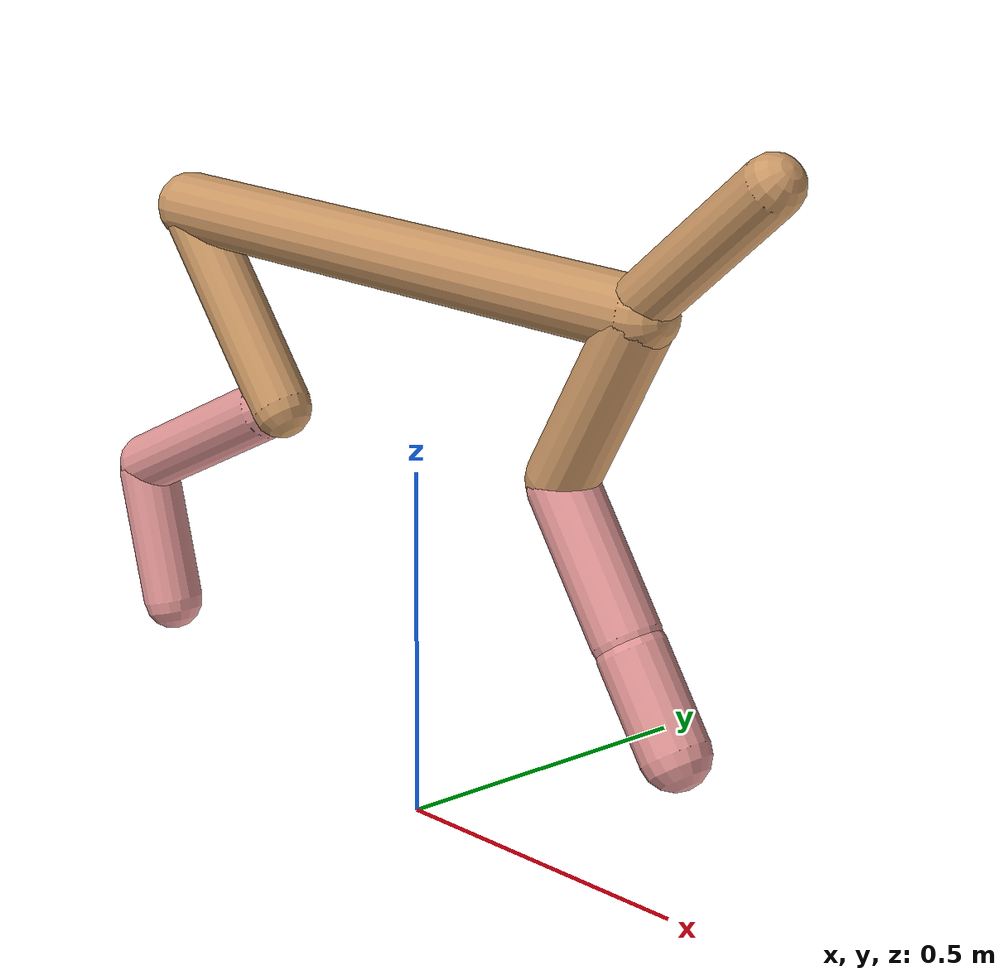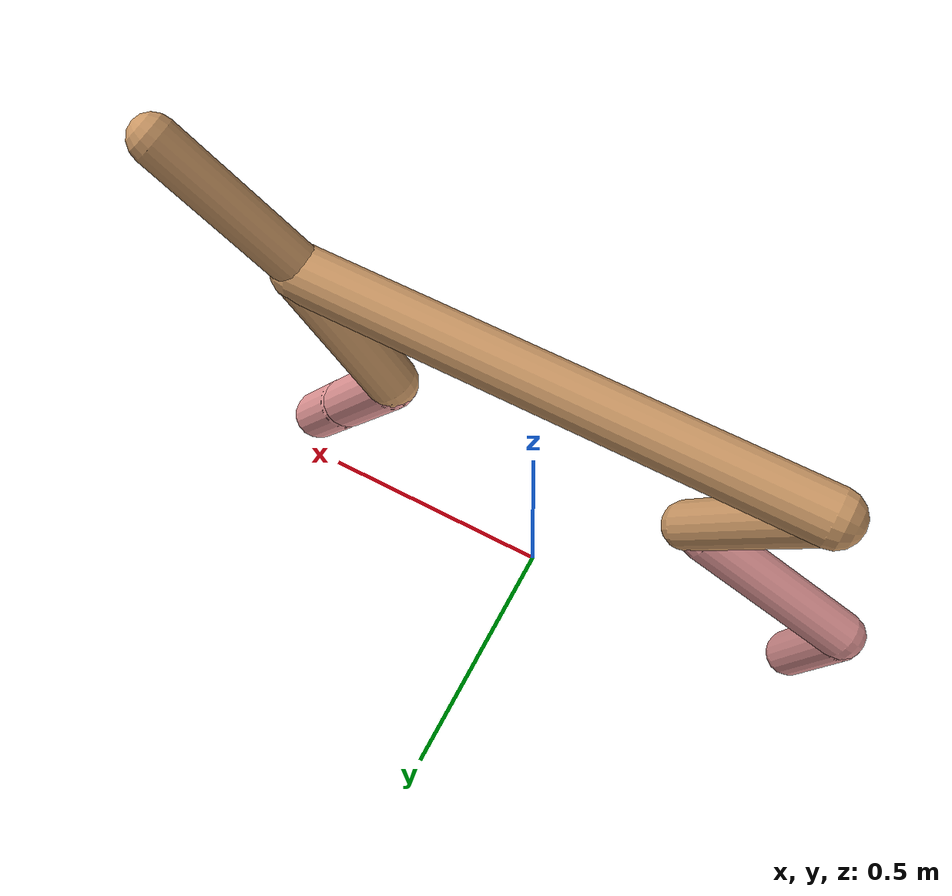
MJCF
<mujoco model="cheetah">
  <compiler angle="radian" coordinate="local" inertiafromgeom="true" settotalmass="14" />
  <default>
    <joint armature=".1" damping=".01" limited="true" solimplimit="0 .8 .03" solreflimit=".02 1" stiffness="8" />
    <geom conaffinity="0" condim="3" contype="1" friction="0.8 .1 .1" rgba="0.8 0.6 .4 1" solimp="0.0 0.8 0.01" solref="0.02 1" />
    <motor ctrllimited="true" ctrlrange="-1 1" />
  </default>
  <size nstack="300000" nuser_geom="1" />
  <option gravity="0 0 -9.81" timestep="0.01" />
  <worldbody>
    <body name="torso" pos="0.0 0.0 0.7975945618689337">
      <joint armature="0" axis="1 0 0" damping="0" limited="false" name="ignorex" pos="0 0 0" stiffness="0" type="slide" />
      <joint armature="0" axis="0 0 1" damping="0" limited="false" name="ignorez" pos="0 0 0" stiffness="0" type="slide" />
      <joint armature="0" axis="0 1 0" damping="0" limited="false" name="ignorey" pos="0 0 0" stiffness="0" type="hinge" />
      <geom fromto="-0.5 0.0 0.0 0.42878992941233535 0.0 0.0" name="torso" size="0.04967306711616059" type="capsule" />
      <geom axisangle="0 1 0 .87" name="head" pos="0.5287899294123354 0.0 0.1" size="0.04145000694635663 0.15" type="capsule" />

      <body name="bthigh" pos="-.5 0 0">
        <joint axis="0 1 0" damping="6" name="bthigh" pos="0 0 0" range="-.52 1.05" stiffness="240" type="hinge" />
        <geom axisangle="0 1 0 -3.8" name="bthigh" pos="0.10731198806180127 0.0 -0.13950558448034164" size="0.04460750282610391 0.1569925520940639" type="capsule" />
        <body name="bshin" pos="0.17462397612360253 0.0 -0.2690111689606833">
          <joint axis="0 1 0" damping="4.5" name="bshin" pos="0 0 0" range="-.785 .785" stiffness="180" type="hinge" />
          <geom axisangle="0 1 0 -2.03" name="bshin" pos="-0.15109634277491077 0.0 -0.07554817138745538" rgba="0.9 0.6 0.6 1" size="0.04460750282610391 0.16240608837316955" type="capsule" />
          <body name="bfoot" pos="-0.30219268554982154 0.0 -0.15109634277491077">
            <joint axis="0 1 0" damping="3" name="bfoot" pos="0 0 0" range="-.4 .785" stiffness="120" type="hinge" />
            <geom axisangle="0 1 0 -.27" name="bfoot" pos="0.03229712405634471 0.0 -0.10442736778218123" rgba="0.9 0.6 0.6 1" size="0.04460750282610391 0.10177448204718625" type="capsule" />
            <inertial mass="10" />
          </body>
        </body>
      </body>
      <body name="fthigh" pos="0.4287899294123354 0.0 0.0">
        <joint axis="0 1 0" damping="4.5" name="fthigh" pos="0 0 0" range="-1.5 0.8" stiffness="180" type="hinge" />
        <geom axisangle="0 1 0 .52" name="fthigh" pos="-0.07236157631233156 0.0 -0.1240484165354255" size="0.048987993962161684 0.13768686666369678" type="capsule" />
        <body name="fshin" pos="-0.14472315262466312 0.0 -0.248096833070851">
          <joint axis="0 1 0" damping="3" name="fshin" pos="0 0 0" range="-1.2 1.1" stiffness="120" type="hinge" />
          <geom axisangle="0 1 0 -.6" name="fshin" pos="0.0671870399460495 0.0 -0.09302820915606853" rgba="0.9 0.6 0.6 1" size="0.048987993962161684 0.10973539749136735" type="capsule" />
          <body name="ffoot" pos="0.134374079892099 0.0 -0.18605641831213707">
            <joint axis="0 1 0" damping="1.5" name="ffoot" pos="0 0 0" range="-3.1 -0.3" stiffness="60" type="hinge" />
            <geom axisangle="0 1 0 -.6" name="ffoot" pos="0.04633392564624642 0.0 -0.07207499544971667" rgba="0.9 0.6 0.6 1" size="0.048987993962161684 0.07246677192826147" type="capsule" />
            <inertial mass="10" />
          </body>
        </body>
      </body>
    </body>
  </worldbody>
  <actuator>
    <motor gear="120" joint="bthigh" name="bthigh" />
    <motor gear="90" joint="bshin" name="bshin" />
    <motor gear="60" joint="bfoot" name="bfoot" />
    <motor gear="120" joint="fthigh" name="fthigh" />
    <motor gear="60" joint="fshin" name="fshin" />
    <motor gear="30" joint="ffoot" name="ffoot" />
  </actuator>
</mujoco>
